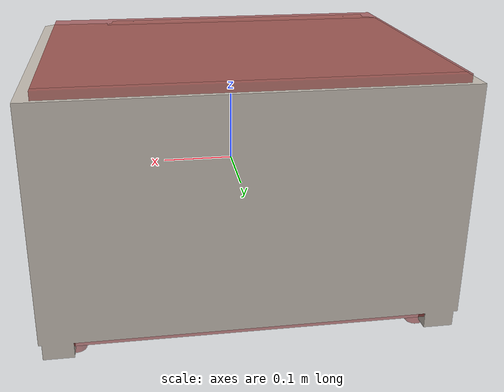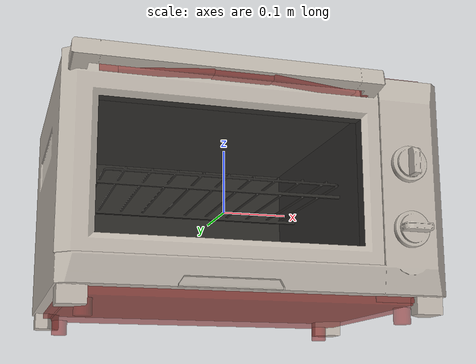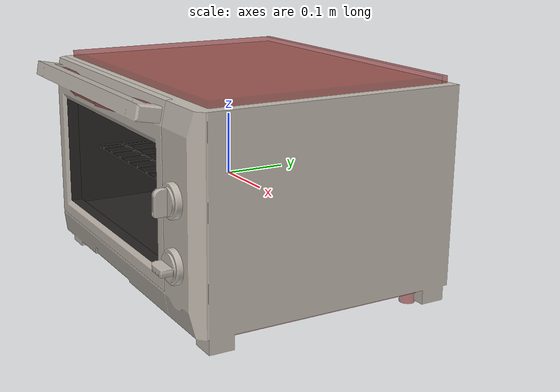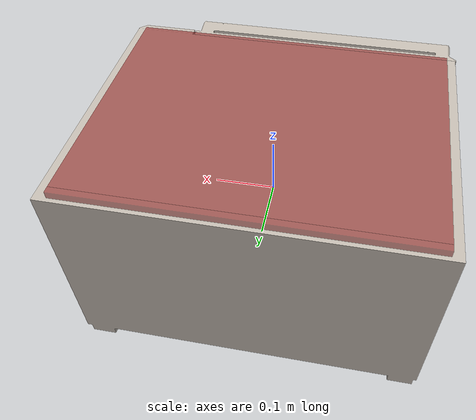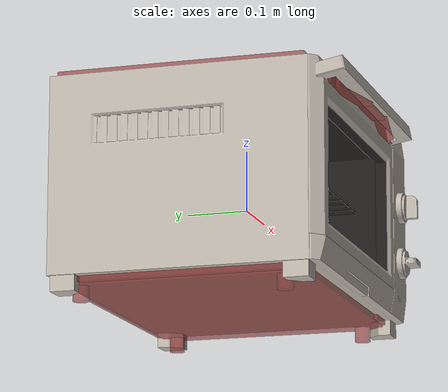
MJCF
<?xml version='1.0' encoding='UTF-8'?>
<mujoco model="model">
  <option timestep="0.002" gravity="0.0 0.0 -9.81"/>
  <compiler angle="radian"/>
  <asset>
    <mesh file="visuals/Body001.obj" name="Body001_vis"/>
    <mesh file="visuals/Door001.obj" name="Door001_vis"/>
    <mesh file="visuals/Door001_Clear.obj" name="Door001_Clear_vis"/>
    <mesh file="visuals/Knob001.obj" name="Knob001_vis"/>
    <mesh file="visuals/Knob002.obj" name="Knob002_vis"/>
    <mesh file="visuals/Shelf001.obj" name="Shelf001_vis"/>
    <texture file="visuals/T_BC001.png" name="Body001_material" type="2d"/>
    <material name="Body001_material" rgba="1 1 1 1.0" texture="Body001_material" shininess="1" specular="1"/>
    <texture file="visuals/T_BC001.png" name="Door001_material" type="2d"/>
    <material name="Door001_material" rgba="1 1 1 1.0" texture="Door001_material" shininess="0.2512328028678894" specular="0.3103448502657381"/>
    <material name="Door001_Clear_material" rgba="0.027718450874090195 0.027718450874090195 0.027718450874090195 0.75" shininess="0.2512328028678894" specular="0.3103448502657381"/>
    <texture file="visuals/T_BC001.png" name="Knob001_material" type="2d"/>
    <material name="Knob001_material" rgba="1 1 1 1.0" texture="Knob001_material" shininess="2" specular="2"/>
    <texture file="visuals/T_BC001.png" name="Knob002_material" type="2d"/>
    <material name="Knob002_material" rgba="1 1 1 1.0" texture="Knob002_material" shininess="2" specular="2"/>
    <texture file="visuals/T_BC001.png" name="Shelf001_material" type="2d"/>
    <material name="Shelf001_material" rgba="1 1 1 1.0" texture="Shelf001_material" shininess="15" specular="15"/>
  </asset>
  <default>
    <default class="visual">
      <geom conaffinity="0" contype="0" group="1" type="mesh"/>
    </default>
    <default class="collision">
      <geom group="0" rgba="0.5 0 0 0.5"/>
    </default>
    <default class="spawn">
      <geom group="0" rgba="1 1 1 0.5" contype="0" conaffinity="0"/>
      <site group="0" rgba="1 1 1 0.5"/>
    </default>
    <default class="region">
      <geom group="1" conaffinity="0" contype="0" rgba="0 1 0 0"/>
    </default>
  </default>
  <worldbody>
    <body>
      <body name="object">
        <geom mesh="Body001_vis" type="mesh" solimp="0.998 0.998 0.001" solref="0.001 1" friction="0.95 0.3 0.1" class="visual" material="Body001_material"/>
        <geom class="collision" type="box" pos="-0.038459669798612595 0.03006037324666977 -0.018339481204748154" size="0.1945507973432541 0.17155130207538605 0.002026360249146819" quat="1.0 0.0 0.0 0.0" density="1000.0"/>
        <geom class="collision" type="box" pos="-0.0007457605679519475 0.22536176443099976 0.013563407585024834" size="0.25858113169670105 0.005080300383269787 0.1686781346797943" quat="1.0 0.0 0.0 0.0" density="1000.0"/>
        <geom class="collision" type="box" pos="-0.0007457605679519475 0.024854116141796112 0.17399555444717407" size="0.25858113169670105 0.19542735815048218 0.008245944045484066" quat="1.0 0.0 0.0 0.0" density="1000.0"/>
        <geom class="collision" type="box" pos="-0.25257155299186707 0.024854116141796112 0.0056472220458090305" size="0.006755355279892683 0.19542735815048218 0.16010236740112305" quat="1.0 0.0 0.0 0.0" density="1000.0"/>
        <geom class="collision" type="box" pos="0.006009556353092194 0.02679711952805519 -0.14971891045570374" size="0.25182580947875977 0.1934843510389328 0.00789948832243681" quat="1.0 0.0 0.0 0.0" density="1000.0"/>
        <geom class="collision" type="box" pos="0.21715101599693298 0.024601221084594727 0.005647222977131605" size="0.041074566543102264 0.19568024575710297 0.16010236740112305" quat="1.0 0.0 0.0 0.0" density="1000.0"/>
        <geom class="collision" type="box" pos="-0.24223238229751587 0.031555432826280594 0.0056472220458090305" size="0.006755355279892683 0.1887260526418686 0.16010236740112305" quat="1.0 0.0 0.0 0.0" density="1000.0"/>
        <geom class="collision" type="box" pos="0.17393207550048828 0.031555432826280594 0.0056472220458090305" size="0.014827726408839226 0.1887260526418686 0.16010236740112305" quat="1.0 0.0 0.0 0.0" density="1000.0"/>
        <geom class="collision" type="box" pos="-0.03818636015057564 0.031555403023958206 0.16610950231552124" size="0.006755355279892683 0.1887260526418686 0.20359595119953156" quat="0.7071068286895752 -4.750302551315144e-08 0.7071067094802856 4.7503014855010406e-08" density="1000.0"/>
        <geom class="collision" type="box" pos="-0.03818632289767265 0.03155545890331268 -0.14332428574562073" size="0.010608116164803505 0.1887260526418686 0.20359595119953156" quat="0.7071068286895752 -4.750302551315144e-08 0.7071067094802856 4.7503014855010406e-08" density="1000.0"/>
        <geom class="collision" type="box" pos="-0.2320302426815033 -0.0837954431772232 0.008008696138858795" size="0.005274172406643629 0.04465195909142494 0.01684456877410412" quat="1.0 0.0 0.0 0.0" density="1000.0"/>
        <geom class="collision" type="box" pos="-0.2320302426815033 0.15107284486293793 0.008008696138858795" size="0.005274172406643629 0.04465195909142494 0.01684456877410412" quat="1.0 0.0 0.0 0.0" density="1000.0"/>
        <geom class="collision" type="box" pos="-0.2320302426815033 -0.0837954431772232 0.052791304886341095" size="0.005274172406643629 0.04465195909142494 0.01684456877410412" quat="1.0 0.0 0.0 0.0" density="1000.0"/>
        <geom class="collision" type="box" pos="-0.2320302426815033 0.15107284486293793 0.052791304886341095" size="0.005274172406643629 0.04465195909142494 0.01684456877410412" quat="1.0 0.0 0.0 0.0" density="1000.0"/>
        <geom class="collision" type="box" pos="-0.2320302426815033 -0.07709218561649323 0.09709606319665909" size="0.005274171940982342 0.035627953708171844 0.01684456877410412" quat="1.0 0.0 0.0 0.0" density="1000.0"/>
        <geom class="collision" type="box" pos="-0.2320302426815033 0.13946612179279327 0.09709606319665909" size="0.005274171940982342 0.03220980614423752 0.01684456877410412" quat="1.0 0.0 0.0 0.0" density="1000.0"/>
        <geom class="collision" type="box" pos="-0.2320302426815033 0.15107284486293793 -0.04028761386871338" size="0.005274172406643629 0.04465195909142494 0.01684456877410412" quat="7.549790126404332e-08 -1.0 -2.220446049250313e-16 -3.8083412071160693e-31" density="1000.0"/>
        <geom class="collision" type="box" pos="-0.2320302426815033 -0.0837954431772232 -0.04028765857219696" size="0.005274172406643629 0.04465195909142494 0.01684456877410412" quat="7.549790126404332e-08 -1.0 -2.220446049250313e-16 -3.8083412071160693e-31" density="1000.0"/>
        <geom class="collision" type="box" pos="-0.2320302426815033 0.14436958730220795 -0.08459237962961197" size="0.005274171940982342 0.035627953708171844 0.01684456877410412" quat="7.549790126404332e-08 -1.0 -2.220446049250313e-16 -3.8083412071160693e-31" density="1000.0"/>
        <geom class="collision" type="box" pos="-0.2320302426815033 -0.07218872010707855 -0.08459240943193436" size="0.005274171940982342 0.03220980614423752 0.01684456877410412" quat="7.549790126404332e-08 -1.0 -2.220446049250313e-16 -3.8083412071160693e-31" density="1000.0"/>
        <geom class="collision" type="box" pos="0.15681472420692444 -0.0837954431772232 0.008008696138858795" size="0.005274172406643629 0.04465195909142494 0.01684456877410412" quat="1.0 0.0 0.0 0.0" density="1000.0"/>
        <geom class="collision" type="box" pos="0.15681472420692444 0.15107284486293793 0.008008696138858795" size="0.005274172406643629 0.04465195909142494 0.01684456877410412" quat="1.0 0.0 0.0 0.0" density="1000.0"/>
        <geom class="collision" type="box" pos="0.15681472420692444 -0.0837954431772232 0.052791304886341095" size="0.005274172406643629 0.04465195909142494 0.01684456877410412" quat="1.0 0.0 0.0 0.0" density="1000.0"/>
        <geom class="collision" type="box" pos="0.15681472420692444 0.15107284486293793 0.052791304886341095" size="0.005274172406643629 0.04465195909142494 0.01684456877410412" quat="1.0 0.0 0.0 0.0" density="1000.0"/>
        <geom class="collision" type="box" pos="0.15681472420692444 -0.07709218561649323 0.09709606319665909" size="0.005274171940982342 0.035627953708171844 0.01684456877410412" quat="1.0 0.0 0.0 0.0" density="1000.0"/>
        <geom class="collision" type="box" pos="0.15681472420692444 0.13946612179279327 0.09709606319665909" size="0.005274171940982342 0.03220980614423752 0.01684456877410412" quat="1.0 0.0 0.0 0.0" density="1000.0"/>
        <geom class="collision" type="box" pos="0.15681472420692444 0.15107284486293793 -0.04028761386871338" size="0.005274172406643629 0.04465195909142494 0.01684456877410412" quat="7.549790126404332e-08 -1.0 -2.220446049250313e-16 -3.8083412071160693e-31" density="1000.0"/>
        <geom class="collision" type="box" pos="0.15681472420692444 -0.0837954431772232 -0.04028765857219696" size="0.005274172406643629 0.04465195909142494 0.01684456877410412" quat="7.549790126404332e-08 -1.0 -2.220446049250313e-16 -3.8083412071160693e-31" density="1000.0"/>
        <geom class="collision" type="box" pos="0.15681472420692444 0.14436958730220795 -0.08459237962961197" size="0.005274171940982342 0.035627953708171844 0.01684456877410412" quat="7.549790126404332e-08 -1.0 -2.220446049250313e-16 -3.8083412071160693e-31" density="1000.0"/>
        <geom class="collision" type="box" pos="0.15681472420692444 -0.07218872010707855 -0.08459240943193436" size="0.005274171940982342 0.03220980614423752 0.01684456877410412" quat="7.549790126404332e-08 -1.0 -2.220446049250313e-16 -3.8083412071160693e-31" density="1000.0"/>
        <geom class="collision" type="cylinder" pos="0.23314112424850464 -0.13210473954677582 -0.16843681037425995" size="0.01263634953647852 0.01263634953647852" quat="1.0 0.0 0.0 0.0" density="1000.0"/>
        <geom class="collision" type="cylinder" pos="0.23314112424850464 0.19582204520702362 -0.16843681037425995" size="0.01263634953647852 0.01263634953647852" quat="1.0 0.0 0.0 0.0" density="1000.0"/>
        <geom class="collision" type="cylinder" pos="-0.23202680051326752 -0.13210473954677582 -0.16843681037425995" size="0.01263634953647852 0.01263634953647852" quat="1.0 0.0 0.0 0.0" density="1000.0"/>
        <geom class="collision" type="cylinder" pos="-0.23202680051326752 0.19582204520702362 -0.16843681037425995" size="0.01263634953647852 0.01263634953647852" quat="1.0 0.0 0.0 0.0" density="1000.0"/>
        <body name="Door001">
          <joint axis="1.0 0.0 0.0" pos="-0.03550801798701286 -0.16757157444953918 -0.1321888566017151" limited="true" name="Door001_joint" range="0.0 1.5707963267948966" type="hinge" damping="1" frictionloss="1" armature=".01" stiffness="1" springref="-1"/>
          <geom mesh="Door001_vis" type="mesh" solimp="0.998 0.998 0.001" solref="0.001 1" friction="0.95 0.3 0.1" class="visual" material="Door001_material"/>
          <geom class="collision" type="box" pos="-0.035529397428035736 -0.17870929837226868 0.14865490794181824" size="0.20355772972106934 0.005889417137950659 0.012151091359555721" quat="1.0 0.0 0.0 0.0" density="1000.0"/>
          <geom class="collision" type="box" pos="-0.035529397428035736 -0.1645747274160385 -0.11987551301717758" size="0.20355837047100067 0.0039117601700127125 0.010819010436534882" quat="1.0 0.0 0.0 0.0" density="1000.0"/>
          <geom class="collision" type="box" pos="0.157125785946846 -0.1602473258972168 0.013051370158791542" size="0.010897890664637089 0.00302733457647264 0.12345529347658157" quat="1.0 0.0 0.0 0.0" density="1000.0"/>
          <geom class="collision" type="box" pos="-0.22930143773555756 -0.16048060357570648 0.013342132791876793" size="0.010897873900830746 0.0032606085296720266 0.12316428124904633" quat="1.0 0.0 0.0 0.0" density="1000.0"/>
          <geom class="collision" type="box" pos="-0.21602213382720947 -0.19494229555130005 0.14781418442726135" size="0.012606588192284107 0.01035165973007679 0.010810812935233116" quat="1.0 0.0 0.0 0.0" density="1000.0"/>
          <geom class="collision" type="box" pos="0.14512749016284943 -0.19494229555130005 0.14781418442726135" size="0.012606557458639145 0.010351643897593021 0.010810798034071922" quat="1.0 0.0 0.0 0.0" density="1000.0"/>
          <geom class="collision" type="box" pos="0.06947321444749832 -0.21327179670333862 0.14781418442726135" size="0.06452859193086624 0.010351533070206642 0.010810687206685543" quat="0.9969000220298767 0.0 0.0 0.07867899537086487" density="1000.0"/>
          <geom class="collision" type="box" pos="-0.14008602499961853 -0.2123119831085205 0.14781418442726135" size="0.06452859193086624 0.010351533070206642 0.010810687206685543" quat="0.9969000220298767 0.0 -0.0 -0.07867901772260666" density="1000.0"/>
          <geom class="collision" type="box" pos="-0.035306405276060104 -0.21971465647220612 0.14781418442726135" size="0.04197297990322113 0.010351628996431828 0.010810782201588154" quat="1.0 0.0 0.0 0.0" density="1000.0"/>
          <body name="Door001_Clear">
            <geom mesh="Door001_Clear_vis" type="mesh" solimp="0.998 0.998 0.001" solref="0.001 1" friction="0.95 0.3 0.1" class="visual" material="Door001_Clear_material"/>
            <geom class="collision" type="box" pos="-0.035523295402526855 -0.16724194586277008 0.012841787189245224" size="0.20578330755233765 0.001694351900368929 0.12130924314260483" quat="1.0 0.0 0.0 0.0" density="1000.0"/>
          </body>
        </body>
        <body name="Knob001">
          <joint axis="0.0 1.0 0.0" pos="0.21950900554656982 -0.18041422963142395 0.05478488653898239" limited="true" name="Knob001_joint" range="0.0 4.799655442984406" type="hinge" damping="0.05" armature="0.001"/>
          <geom mesh="Knob001_vis" type="mesh" solimp="0.998 0.998 0.001" solref="0.001 1" friction="0.95 0.3 0.1" class="visual" material="Knob001_material"/>
          <geom class="collision" type="cylinder" pos="0.21832531690597534 -0.1762993186712265 0.0544036328792572" size="0.02282606065273285 0.0021433064248412848" quat="0.7071067094802856 0.7071068286895752 0.0 0.0" density="1000.0"/>
          <geom class="collision" type="box" pos="0.21892495453357697 -0.18578949570655823 0.05496831238269806" size="0.006072560325264931 0.007540433201938868 0.019012343138456345" quat="1.0 0.0 0.0 0.0" density="1000.0"/>
        </body>
        <body name="Knob002">
          <joint axis="0.0 1.0 0.0" pos="0.21945226192474365 -0.18017637729644775 -0.050140537321567535" limited="true" name="Knob002_joint" range="0.0 4.014257279586958" type="hinge" damping="0.05" armature="0.001"/>
          <geom mesh="Knob002_vis" type="mesh" solimp="0.998 0.998 0.001" solref="0.001 1" friction="0.95 0.3 0.1" class="visual" material="Knob002_material"/>
          <geom class="collision" type="cylinder" pos="0.21832531690597534 -0.1762993186712265 -0.050196513533592224" size="0.02282606065273285 0.0021433064248412848" quat="0.7071067094802856 0.7071068286895752 0.0 0.0" density="1000.0"/>
          <geom class="collision" type="box" pos="0.21892495453357697 -0.18578949570655823 -0.0496320016682148" size="0.006072559859603643 0.007540433201938868 0.018874872475862503" quat="1.0 0.0 0.0 0.0" density="1000.0"/>
        </body>
        <body name="Shelf001">
          <joint axis="0.0 -1.0 0.0" pos="-0.037293076515197754 0.028795551508665085 -0.017761364579200745" limited="true" name="Shelf001_joint" range="0.0 0.25" type="slide" damping="1" frictionloss="1" armature=".01" stiffness="0.05"/>
          <geom mesh="Shelf001_vis" type="mesh" solimp="0.998 0.998 0.001" solref="0.001 1" friction="0.95 0.3 0.1" class="visual" material="Shelf001_material"/>
        </body>
        <geom class="region" name="reg_int" type="box" pos="-0.038324251770973206 0.032928816974163055 0.013854213058948517" size="0.1974797397851944 0.1889384612441063 0.14760901778936386"/>
        <geom class="region" name="reg_main" type="box" pos="0.0 0.029098711907863617 0.0" size="0.25932687520980835 0.20134538412094116 0.1822415292263031"/>
      </body>
    </body>
  </worldbody>
  <actuator>
    <motor name="Door001_joint_actuator" joint="Door001_joint" gear="30"/>
    <motor name="Knob001_joint_actuator" joint="Knob001_joint" gear="10"/>
    <motor name="Knob002_joint_actuator" joint="Knob002_joint" gear="10"/>
    <motor name="Shelf001_joint_actuator" joint="Shelf001_joint" gear="10"/>
  </actuator>
</mujoco>
